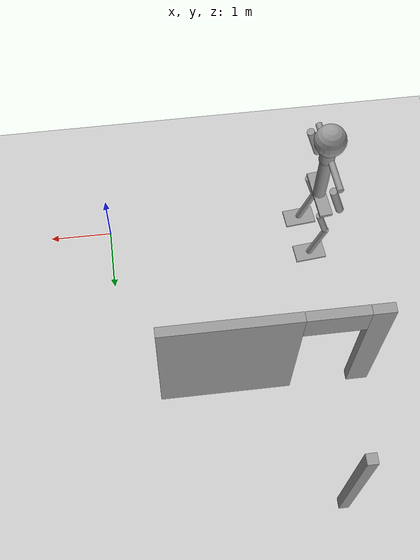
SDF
<sdf version="1.6">
 <world name="default">
  <model name="ground_plane">
   <static>1</static>
   <link name="link">
    <collision name="collision">
     <geometry><plane><normal>0 0 1</normal><size>100 100</size></plane></geometry>
     <surface><friction><ode><mu>100</mu><mu2>50</mu2></ode></friction></surface>
    </collision>
    <visual name="visual">
     <cast_shadows>0</cast_shadows>
     <geometry><plane><normal>0 0 1</normal><size>100 100</size></plane></geometry>
     <material>
      <script><uri>file://media/materials/scripts/gazebo.material</uri><name>Gazebo/Grey</name></script>
     </material>
    </visual>
   </link>
  </model>
  <model name="Building">
   <pose>-0.293126 -0.203944 0 0 -0 0</pose>
   <link name="Wall_27">
    <collision name="Wall_27_Collision">
     <geometry><box><size>0.15 0.15 2.5</size></box></geometry>
     <pose>0 0 1.25 0 -0 0</pose>
    </collision>
    <visual name="Wall_27_Visual">
     <pose>0 0 1.25 0 -0 0</pose>
     <geometry><box><size>0.15 0.15 2.5</size></box></geometry>
     <material>
      <script><uri>file://media/materials/scripts/gazebo.material</uri><name>Gazebo/Grey</name></script>
      <ambient>1 1 1 1</ambient>
     </material>
     <meta><layer>0</layer></meta>
    </visual>
    <pose>-2.80058 5.17081 0 0 -0 0</pose>
   </link>
   <link name="Wall_43">
    <pose>-1.90246 3.17229 0 0 -0 0</pose>
    <visual name="Wall_43_Visual_0">
     <pose>-1.45957 0 1.25 0 -0 0</pose>
     <geometry><box><size>0.330852 0.15 2.5</size></box></geometry>
     <material>
      <script><uri>file://media/materials/scripts/gazebo.material</uri><name>Gazebo/Grey</name></script>
      <ambient>1 1 1 1</ambient>
     </material>
     <meta><layer>0</layer></meta>
    </visual>
    <collision name="Wall_43_Collision_0">
     <geometry><box><size>0.330852 0.15 2.5</size></box></geometry>
     <pose>-1.45957 0 1.25 0 -0 0</pose>
    </collision>
    <visual name="Wall_43_Visual_1">
     <pose>0.615426 0 1.25 0 -0 0</pose>
     <geometry><box><size>2.01915 0.15 2.5</size></box></geometry>
     <material>
      <script><uri>file://media/materials/scripts/gazebo.material</uri><name>Gazebo/Grey</name></script>
      <ambient>1 1 1 1</ambient>
     </material>
     <meta><layer>0</layer></meta>
    </visual>
    <collision name="Wall_43_Collision_1">
     <geometry><box><size>2.01915 0.15 2.5</size></box></geometry>
     <pose>0.615426 0 1.25 0 -0 0</pose>
    </collision>
    <visual name="Wall_43_Visual_2">
     <pose>-0.844148 0 2.25 0 -0 0</pose>
     <geometry><box><size>0.9 0.15 0.5</size></box></geometry>
     <material>
      <script><uri>file://media/materials/scripts/gazebo.material</uri><name>Gazebo/Grey</name></script>
      <ambient>1 1 1 1</ambient>
     </material>
     <meta><layer>0</layer></meta>
    </visual>
    <collision name="Wall_43_Collision_2">
     <geometry><box><size>0.9 0.15 0.5</size></box></geometry>
     <pose>-0.844148 0 2.25 0 -0 0</pose>
    </collision>
   </link>
   <static>1</static>
  </model>
  <model name="HumanoidRobot_0">
   <model name="Untitled">
    <model name="HumanoidRobot">
     <link name="link_1">
      <pose>-0.173443 0.410402 2.12746 0 -0 0</pose>
      <inertial>
       <mass>0.94</mass>
       <inertia><ixx>0.1</ixx><ixy>0</ixy><ixz>0</ixz><iyy>0.1</iyy><iyz>0</iyz><izz>0.1</izz></inertia>
      </inertial>
      <visual name="visual">
       <geometry><sphere><radius>0.24</radius></sphere></geometry>
       <material>
        <lighting>1</lighting>
        <script><uri>file://media/materials/scripts/gazebo.material</uri><name>Gazebo/Grey</name></script>
        <shader type="pixel"><normal_map>__default__</normal_map></shader>
        <ambient>0.3 0.3 0.3 1</ambient>
        <diffuse>0.7 0.7 0.7 1</diffuse>
        <specular>0.01 0.01 0.01 1</specular>
        <emissive>0 0 0 1</emissive>
       </material>
      </visual>
      <collision name="collision">
       <geometry><sphere><radius>0.24</radius></sphere></geometry>
       <surface>
        <friction>
         <ode><mu>1</mu><mu2>1</mu2><fdir1>0 0 0</fdir1><slip1>0</slip1><slip2>0</slip2></ode>
         <torsional>
          <coefficient>1</coefficient>
          <patch_radius>0</patch_radius>
          <surface_radius>0</surface_radius>
          <use_patch_radius>1</use_patch_radius>
          <ode><slip>0</slip></ode>
         </torsional>
        </friction>
        <bounce><restitution_coefficient>0</restitution_coefficient><threshold>1e+06</threshold></bounce>
        <contact>
         <collide_without_contact>0</collide_without_contact>
         <collide_without_contact_bitmask>1</collide_without_contact_bitmask>
         <collide_bitmask>1</collide_bitmask>
         <ode>
          <soft_cfm>0</soft_cfm>
          <soft_erp>0.2</soft_erp>
          <kp>1e+13</kp>
          <kd>1</kd>
          <max_vel>0.01</max_vel>
          <min_depth>0</min_depth>
         </ode>
         <bullet>
          <split_impulse>1</split_impulse>
          <split_impulse_penetration_threshold>-0.01</split_impulse_penetration_threshold>
          <soft_cfm>0</soft_cfm>
          <soft_erp>0.2</soft_erp>
          <kp>1e+13</kp>
          <kd>1</kd>
         </bullet>
        </contact>
       </surface>
      </collision>
     </link>
     <link name="link_2">
      <pose>-0.183443 0.400402 1.74746 0 -0 0</pose>
      <inertial>
       <mass>1</mass>
       <inertia><ixx>0.145833</ixx><ixy>0</ixy><ixz>0</ixz><iyy>0.145833</iyy><iyz>0</iyz><izz>0.125</izz></inertia>
      </inertial>
      <visual name="visual">
       <geometry><cylinder><radius>0.12</radius><length>0.2</length></cylinder></geometry>
       <material>
        <lighting>1</lighting>
        <script><uri>file://media/materials/scripts/gazebo.material</uri><name>Gazebo/Grey</name></script>
        <shader type="pixel"><normal_map>__default__</normal_map></shader>
        <ambient>0.3 0.3 0.3 1</ambient>
        <diffuse>0.7 0.7 0.7 1</diffuse>
        <specular>0.01 0.01 0.01 1</specular>
        <emissive>0 0 0 1</emissive>
       </material>
      </visual>
      <collision name="collision">
       <geometry><cylinder><radius>0.12</radius><length>0.2</length></cylinder></geometry>
       <surface>
        <friction>
         <ode><mu>1</mu><mu2>1</mu2><fdir1>0 0 0</fdir1><slip1>0</slip1><slip2>0</slip2></ode>
         <torsional>
          <coefficient>1</coefficient>
          <patch_radius>0</patch_radius>
          <surface_radius>0</surface_radius>
          <use_patch_radius>1</use_patch_radius>
          <ode><slip>0</slip></ode>
         </torsional>
        </friction>
        <bounce><restitution_coefficient>0</restitution_coefficient><threshold>1e+06</threshold></bounce>
        <contact>
         <collide_without_contact>0</collide_without_contact>
         <collide_without_contact_bitmask>1</collide_without_contact_bitmask>
         <collide_bitmask>1</collide_bitmask>
         <ode>
          <soft_cfm>0</soft_cfm>
          <soft_erp>0.2</soft_erp>
          <kp>1e+13</kp>
          <kd>1</kd>
          <max_vel>0.01</max_vel>
          <min_depth>0</min_depth>
         </ode>
         <bullet>
          <split_impulse>1</split_impulse>
          <split_impulse_penetration_threshold>-0.01</split_impulse_penetration_threshold>
          <soft_cfm>0</soft_cfm>
          <soft_erp>0.2</soft_erp>
          <kp>1e+13</kp>
          <kd>1</kd>
         </bullet>
        </contact>
       </surface>
      </collision>
     </link>
     <link name="link_3">
      <pose>-0.218443 0.410402 1.69752 0 -0 0</pose>
      <inertial>
       <mass>1</mass>
       <inertia><ixx>0.145833</ixx><ixy>0</ixy><ixz>0</ixz><iyy>0.145833</iyy><iyz>0</iyz><izz>0.125</izz></inertia>
      </inertial>
      <visual name="visual">
       <pose>0 0 0 1.5707 -0 0</pose>
       <geometry><cylinder><radius>0.05</radius><length>1.2</length></cylinder></geometry>
       <material>
        <lighting>1</lighting>
        <script><uri>file://media/materials/scripts/gazebo.material</uri><name>Gazebo/Grey</name></script>
        <shader type="pixel"><normal_map>__default__</normal_map></shader>
        <ambient>0.3 0.3 0.3 1</ambient>
        <diffuse>0.7 0.7 0.7 1</diffuse>
        <specular>0.01 0.01 0.01 1</specular>
        <emissive>0 0 0 1</emissive>
       </material>
      </visual>
      <collision name="collision">
       <pose>0 0 0 1.5707 -0 0</pose>
       <geometry><cylinder><radius>0.05</radius><length>1.2</length></cylinder></geometry>
       <surface>
        <friction>
         <ode><mu>1</mu><mu2>1</mu2><fdir1>0 0 0</fdir1><slip1>0</slip1><slip2>0</slip2></ode>
         <torsional>
          <coefficient>1</coefficient>
          <patch_radius>0</patch_radius>
          <surface_radius>0</surface_radius>
          <use_patch_radius>1</use_patch_radius>
          <ode><slip>0</slip></ode>
         </torsional>
        </friction>
        <bounce><restitution_coefficient>0</restitution_coefficient><threshold>1e+06</threshold></bounce>
        <contact>
         <collide_without_contact>0</collide_without_contact>
         <collide_without_contact_bitmask>1</collide_without_contact_bitmask>
         <collide_bitmask>1</collide_bitmask>
         <ode>
          <soft_cfm>0</soft_cfm>
          <soft_erp>0.2</soft_erp>
          <kp>1e+13</kp>
          <kd>1</kd>
          <max_vel>0.01</max_vel>
          <min_depth>0</min_depth>
         </ode>
         <bullet>
          <split_impulse>1</split_impulse>
          <split_impulse_penetration_threshold>-0.01</split_impulse_penetration_threshold>
          <soft_cfm>0</soft_cfm>
          <soft_erp>0.2</soft_erp>
          <kp>1e+13</kp>
          <kd>1</kd>
         </bullet>
        </contact>
       </surface>
      </collision>
     </link>
     <link name="link_4">
      <pose>-0.173443 -0.129603 1.34313 0 -0 0</pose>
      <inertial>
       <mass>1</mass>
       <inertia><ixx>0.145833</ixx><ixy>0</ixy><ixz>0</ixz><iyy>0.145833</iyy><iyz>0</iyz><izz>0.125</izz></inertia>
      </inertial>
      <visual name="visual">
       <pose>0 0 0 0 0.3 0</pose>
       <geometry><cylinder><radius>0.06</radius><length>0.6</length></cylinder></geometry>
       <material>
        <lighting>1</lighting>
        <script><uri>file://media/materials/scripts/gazebo.material</uri><name>Gazebo/Grey</name></script>
        <shader type="pixel"><normal_map>__default__</normal_map></shader>
        <ambient>0.3 0.3 0.3 1</ambient>
        <diffuse>0.7 0.7 0.7 1</diffuse>
        <specular>0.01 0.01 0.01 1</specular>
        <emissive>0 0 0 1</emissive>
       </material>
      </visual>
      <collision name="collision">
       <pose>0 0 0 0 0.3 0</pose>
       <geometry><cylinder><radius>0.06</radius><length>0.6</length></cylinder></geometry>
       <surface>
        <friction>
         <ode><mu>1</mu><mu2>1</mu2><fdir1>0 0 0</fdir1><slip1>0</slip1><slip2>0</slip2></ode>
         <torsional>
          <coefficient>1</coefficient>
          <patch_radius>0</patch_radius>
          <surface_radius>0</surface_radius>
          <use_patch_radius>1</use_patch_radius>
          <ode><slip>0</slip></ode>
         </torsional>
        </friction>
        <bounce><restitution_coefficient>0</restitution_coefficient><threshold>1e+06</threshold></bounce>
        <contact>
         <collide_without_contact>0</collide_without_contact>
         <collide_without_contact_bitmask>1</collide_without_contact_bitmask>
         <collide_bitmask>1</collide_bitmask>
         <ode>
          <soft_cfm>0</soft_cfm>
          <soft_erp>0.2</soft_erp>
          <kp>1e+13</kp>
          <kd>1</kd>
          <max_vel>0.01</max_vel>
          <min_depth>0</min_depth>
         </ode>
         <bullet>
          <split_impulse>1</split_impulse>
          <split_impulse_penetration_threshold>-0.01</split_impulse_penetration_threshold>
          <soft_cfm>0</soft_cfm>
          <soft_erp>0.2</soft_erp>
          <kp>1e+13</kp>
          <kd>1</kd>
         </bullet>
        </contact>
       </surface>
      </collision>
     </link>
     <link name="link_4_clone">
      <pose>-0.224419 0.950407 1.34313 0 -0 0</pose>
      <inertial>
       <mass>1</mass>
       <inertia><ixx>0.145833</ixx><ixy>0</ixy><ixz>0</ixz><iyy>0.145833</iyy><iyz>0</iyz><izz>0.125</izz></inertia>
      </inertial>
      <visual name="visual">
       <pose>0 0 0 0 0.3 0</pose>
       <geometry><cylinder><radius>0.06</radius><length>0.6</length></cylinder></geometry>
       <material>
        <lighting>1</lighting>
        <script><uri>file://media/materials/scripts/gazebo.material</uri><name>Gazebo/Grey</name></script>
        <shader type="pixel"><normal_map>__default__</normal_map></shader>
        <ambient>0.3 0.3 0.3 1</ambient>
        <diffuse>0.7 0.7 0.7 1</diffuse>
        <specular>0.01 0.01 0.01 1</specular>
        <emissive>0 0 0 1</emissive>
       </material>
      </visual>
      <collision name="collision">
       <pose>0 0 0 0 0.3 0</pose>
       <geometry><cylinder><radius>0.06</radius><length>0.6</length></cylinder></geometry>
       <surface>
        <friction>
         <ode><mu>1</mu><mu2>1</mu2><fdir1>0 0 0</fdir1><slip1>0</slip1><slip2>0</slip2></ode>
         <torsional>
          <coefficient>1</coefficient>
          <patch_radius>0</patch_radius>
          <surface_radius>0</surface_radius>
          <use_patch_radius>1</use_patch_radius>
          <ode><slip>0</slip></ode>
         </torsional>
        </friction>
        <bounce><restitution_coefficient>0</restitution_coefficient><threshold>1e+06</threshold></bounce>
        <contact>
         <collide_without_contact>0</collide_without_contact>
         <collide_without_contact_bitmask>1</collide_without_contact_bitmask>
         <collide_bitmask>1</collide_bitmask>
         <ode>
          <soft_cfm>0</soft_cfm>
          <soft_erp>0.2</soft_erp>
          <kp>1e+13</kp>
          <kd>1</kd>
          <max_vel>0.01</max_vel>
          <min_depth>0</min_depth>
         </ode>
         <bullet>
          <split_impulse>1</split_impulse>
          <split_impulse_penetration_threshold>-0.01</split_impulse_penetration_threshold>
          <soft_cfm>0</soft_cfm>
          <soft_erp>0.2</soft_erp>
          <kp>1e+13</kp>
          <kd>1</kd>
         </bullet>
        </contact>
       </surface>
      </collision>
     </link>
     <link name="link_5">
      <pose>-0.193443 0.390402 1.14746 0 -0 0</pose>
      <inertial>
       <mass>1</mass>
       <inertia><ixx>0.145833</ixx><ixy>0</ixy><ixz>0</ixz><iyy>0.145833</iyy><iyz>0</iyz><izz>0.125</izz></inertia>
      </inertial>
      <visual name="visual">
       <geometry><cylinder><radius>0.1</radius><length>1</length></cylinder></geometry>
       <material>
        <lighting>1</lighting>
        <script><uri>file://media/materials/scripts/gazebo.material</uri><name>Gazebo/Grey</name></script>
        <shader type="pixel"><normal_map>__default__</normal_map></shader>
        <ambient>0.3 0.3 0.3 1</ambient>
        <diffuse>0.7 0.7 0.7 1</diffuse>
        <specular>0.01 0.01 0.01 1</specular>
        <emissive>0 0 0 1</emissive>
       </material>
      </visual>
      <collision name="collision">
       <geometry><cylinder><radius>0.1</radius><length>1</length></cylinder></geometry>
       <surface>
        <friction>
         <ode><mu>1</mu><mu2>1</mu2><fdir1>0 0 0</fdir1><slip1>0</slip1><slip2>0</slip2></ode>
         <torsional>
          <coefficient>1</coefficient>
          <patch_radius>0</patch_radius>
          <surface_radius>0</surface_radius>
          <use_patch_radius>1</use_patch_radius>
          <ode><slip>0</slip></ode>
         </torsional>
        </friction>
        <bounce><restitution_coefficient>0</restitution_coefficient><threshold>1e+06</threshold></bounce>
        <contact>
         <collide_without_contact>0</collide_without_contact>
         <collide_without_contact_bitmask>1</collide_without_contact_bitmask>
         <collide_bitmask>1</collide_bitmask>
         <ode>
          <soft_cfm>0</soft_cfm>
          <soft_erp>0.2</soft_erp>
          <kp>1e+13</kp>
          <kd>1</kd>
          <max_vel>0.01</max_vel>
          <min_depth>0</min_depth>
         </ode>
         <bullet>
          <split_impulse>1</split_impulse>
          <split_impulse_penetration_threshold>-0.01</split_impulse_penetration_threshold>
          <soft_cfm>0</soft_cfm>
          <soft_erp>0.2</soft_erp>
          <kp>1e+13</kp>
          <kd>1</kd>
         </bullet>
        </contact>
       </surface>
      </collision>
     </link>
     <link name="link_6">
      <pose>-0.193443 0.410402 0.672459 0 -0 0</pose>
      <inertial>
       <mass>1</mass>
       <inertia>
        <ixx>0.166667</ixx>
        <ixy>0</ixy>
        <ixz>0</ixz>
        <iyy>0.166667</iyy>
        <iyz>0</iyz>
        <izz>0.166667</izz>
       </inertia>
      </inertial>
      <visual name="visual">
       <geometry><box><size>0.2 0.8 0.05</size></box></geometry>
       <material>
        <lighting>1</lighting>
        <script><uri>file://media/materials/scripts/gazebo.material</uri><name>Gazebo/Grey</name></script>
        <shader type="pixel"><normal_map>__default__</normal_map></shader>
        <ambient>0.3 0.3 0.3 1</ambient>
        <diffuse>0.7 0.7 0.7 1</diffuse>
        <specular>0.01 0.01 0.01 1</specular>
        <emissive>0 0 0 1</emissive>
       </material>
      </visual>
      <collision name="collision">
       <geometry><box><size>0.2 0.8 0.05</size></box></geometry>
       <surface>
        <friction>
         <ode><mu>1</mu><mu2>1</mu2><fdir1>0 0 0</fdir1><slip1>0</slip1><slip2>0</slip2></ode>
         <torsional>
          <coefficient>1</coefficient>
          <patch_radius>0</patch_radius>
          <surface_radius>0</surface_radius>
          <use_patch_radius>1</use_patch_radius>
          <ode><slip>0</slip></ode>
         </torsional>
        </friction>
        <bounce><restitution_coefficient>0</restitution_coefficient><threshold>1e+06</threshold></bounce>
        <contact>
         <collide_without_contact>0</collide_without_contact>
         <collide_without_contact_bitmask>1</collide_without_contact_bitmask>
         <collide_bitmask>1</collide_bitmask>
         <ode>
          <soft_cfm>0</soft_cfm>
          <soft_erp>0.2</soft_erp>
          <kp>1e+13</kp>
          <kd>1</kd>
          <max_vel>0.01</max_vel>
          <min_depth>0</min_depth>
         </ode>
         <bullet>
          <split_impulse>1</split_impulse>
          <split_impulse_penetration_threshold>-0.01</split_impulse_penetration_threshold>
          <soft_cfm>0</soft_cfm>
          <soft_erp>0.2</soft_erp>
          <kp>1e+13</kp>
          <kd>1</kd>
         </bullet>
        </contact>
       </surface>
      </collision>
     </link>
     <link name="link_7">
      <pose>-0.18262 0.060402 0.393848 0 -0 0</pose>
      <inertial>
       <mass>1</mass>
       <inertia><ixx>0.145833</ixx><ixy>0</ixy><ixz>0</ixz><iyy>0.145833</iyy><iyz>0</iyz><izz>0.125</izz></inertia>
      </inertial>
      <visual name="visual">
       <pose>0 0 0 0 0.3 0</pose>
       <geometry><cylinder><radius>0.05</radius><length>0.5</length></cylinder></geometry>
       <material>
        <lighting>1</lighting>
        <script><uri>file://media/materials/scripts/gazebo.material</uri><name>Gazebo/Grey</name></script>
        <shader type="pixel"><normal_map>__default__</normal_map></shader>
        <ambient>0.3 0.3 0.3 1</ambient>
        <diffuse>0.7 0.7 0.7 1</diffuse>
        <specular>0.01 0.01 0.01 1</specular>
        <emissive>0 0 0 1</emissive>
       </material>
      </visual>
      <collision name="collision">
       <pose>0 0 0 0 0.3 0</pose>
       <geometry><cylinder><radius>0.05</radius><length>0.5</length></cylinder></geometry>
       <surface>
        <friction>
         <ode><mu>1</mu><mu2>1</mu2><fdir1>0 0 0</fdir1><slip1>0</slip1><slip2>0</slip2></ode>
         <torsional>
          <coefficient>1</coefficient>
          <patch_radius>0</patch_radius>
          <surface_radius>0</surface_radius>
          <use_patch_radius>1</use_patch_radius>
          <ode><slip>0</slip></ode>
         </torsional>
        </friction>
        <bounce><restitution_coefficient>0</restitution_coefficient><threshold>1e+06</threshold></bounce>
        <contact>
         <collide_without_contact>0</collide_without_contact>
         <collide_without_contact_bitmask>1</collide_without_contact_bitmask>
         <collide_bitmask>1</collide_bitmask>
         <ode>
          <soft_cfm>0</soft_cfm>
          <soft_erp>0.2</soft_erp>
          <kp>1e+13</kp>
          <kd>1</kd>
          <max_vel>0.01</max_vel>
          <min_depth>0</min_depth>
         </ode>
         <bullet>
          <split_impulse>1</split_impulse>
          <split_impulse_penetration_threshold>-0.01</split_impulse_penetration_threshold>
          <soft_cfm>0</soft_cfm>
          <soft_erp>0.2</soft_erp>
          <kp>1e+13</kp>
          <kd>1</kd>
         </bullet>
        </contact>
       </surface>
      </collision>
     </link>
     <link name="link_7_clone">
      <pose>-0.173443 0.760402 0.393849 0 -0 0</pose>
      <inertial>
       <mass>1</mass>
       <inertia><ixx>0.145833</ixx><ixy>0</ixy><ixz>0</ixz><iyy>0.145833</iyy><iyz>0</iyz><izz>0.125</izz></inertia>
      </inertial>
      <visual name="visual">
       <pose>0 0 0 0 0.3 0</pose>
       <geometry><cylinder><radius>0.05</radius><length>0.5</length></cylinder></geometry>
       <material>
        <lighting>1</lighting>
        <script><uri>file://media/materials/scripts/gazebo.material</uri><name>Gazebo/Grey</name></script>
        <shader type="pixel"><normal_map>__default__</normal_map></shader>
        <ambient>0.3 0.3 0.3 1</ambient>
        <diffuse>0.7 0.7 0.7 1</diffuse>
        <specular>0.01 0.01 0.01 1</specular>
        <emissive>0 0 0 1</emissive>
       </material>
      </visual>
      <collision name="collision">
       <pose>0 0 0 0 0.3 0</pose>
       <geometry><cylinder><radius>0.05</radius><length>0.5</length></cylinder></geometry>
       <surface>
        <friction>
         <ode><mu>1</mu><mu2>1</mu2><fdir1>0 0 0</fdir1><slip1>0</slip1><slip2>0</slip2></ode>
         <torsional>
          <coefficient>1</coefficient>
          <patch_radius>0</patch_radius>
          <surface_radius>0</surface_radius>
          <use_patch_radius>1</use_patch_radius>
          <ode><slip>0</slip></ode>
         </torsional>
        </friction>
        <bounce><restitution_coefficient>0</restitution_coefficient><threshold>1e+06</threshold></bounce>
        <contact>
         <collide_without_contact>0</collide_without_contact>
         <collide_without_contact_bitmask>1</collide_without_contact_bitmask>
         <collide_bitmask>1</collide_bitmask>
         <ode>
          <soft_cfm>0</soft_cfm>
          <soft_erp>0.2</soft_erp>
          <kp>1e+13</kp>
          <kd>1</kd>
          <max_vel>0.01</max_vel>
          <min_depth>0</min_depth>
         </ode>
         <bullet>
          <split_impulse>1</split_impulse>
          <split_impulse_penetration_threshold>-0.01</split_impulse_penetration_threshold>
          <soft_cfm>0</soft_cfm>
          <soft_erp>0.2</soft_erp>
          <kp>1e+13</kp>
          <kd>1</kd>
         </bullet>
        </contact>
       </surface>
      </collision>
     </link>
     <link name="link_8">
      <pose>-0.173443 0.060402 -0.208906 0 -0 0</pose>
      <inertial>
       <mass>1</mass>
       <inertia><ixx>0.145833</ixx><ixy>0</ixy><ixz>0</ixz><iyy>0.145833</iyy><iyz>0</iyz><izz>0.125</izz></inertia>
      </inertial>
      <visual name="visual">
       <pose>0 0 0 0 -0.3 0</pose>
       <geometry><cylinder><radius>0.05</radius><length>0.7</length></cylinder></geometry>
       <material>
        <lighting>1</lighting>
        <script><uri>file://media/materials/scripts/gazebo.material</uri><name>Gazebo/Grey</name></script>
        <shader type="pixel"><normal_map>__default__</normal_map></shader>
        <ambient>0.3 0.3 0.3 1</ambient>
        <diffuse>0.7 0.7 0.7 1</diffuse>
        <specular>0.01 0.01 0.01 1</specular>
        <emissive>0 0 0 1</emissive>
       </material>
      </visual>
      <collision name="collision">
       <pose>0 0 0 0 -0.3 0</pose>
       <geometry><cylinder><radius>0.05</radius><length>0.7</length></cylinder></geometry>
       <surface>
        <friction>
         <ode><mu>1</mu><mu2>1</mu2><fdir1>0 0 0</fdir1><slip1>0</slip1><slip2>0</slip2></ode>
         <torsional>
          <coefficient>1</coefficient>
          <patch_radius>0</patch_radius>
          <surface_radius>0</surface_radius>
          <use_patch_radius>1</use_patch_radius>
          <ode><slip>0</slip></ode>
         </torsional>
        </friction>
        <bounce><restitution_coefficient>0</restitution_coefficient><threshold>1e+06</threshold></bounce>
        <contact>
         <collide_without_contact>0</collide_without_contact>
         <collide_without_contact_bitmask>1</collide_without_contact_bitmask>
         <collide_bitmask>1</collide_bitmask>
         <ode>
          <soft_cfm>0</soft_cfm>
          <soft_erp>0.2</soft_erp>
          <kp>1e+13</kp>
          <kd>1</kd>
          <max_vel>0.01</max_vel>
          <min_depth>0</min_depth>
         </ode>
         <bullet>
          <split_impulse>1</split_impulse>
          <split_impulse_penetration_threshold>-0.01</split_impulse_penetration_threshold>
          <soft_cfm>0</soft_cfm>
          <soft_erp>0.2</soft_erp>
          <kp>1e+13</kp>
          <kd>1</kd>
         </bullet>
        </contact>
       </surface>
      </collision>
     </link>
     <link name="link_8_clone">
      <pose>-0.173443 0.760402 -0.208905 0 -0 0</pose>
      <inertial>
       <mass>1</mass>
       <inertia><ixx>0.145833</ixx><ixy>0</ixy><ixz>0</ixz><iyy>0.145833</iyy><iyz>0</iyz><izz>0.125</izz></inertia>
      </inertial>
      <visual name="visual">
       <pose>0 0 0 0 -0.3 0</pose>
       <geometry><cylinder><radius>0.05</radius><length>0.7</length></cylinder></geometry>
       <material>
        <lighting>1</lighting>
        <script><uri>file://media/materials/scripts/gazebo.material</uri><name>Gazebo/Grey</name></script>
        <shader type="pixel"><normal_map>__default__</normal_map></shader>
        <ambient>0.3 0.3 0.3 1</ambient>
        <diffuse>0.7 0.7 0.7 1</diffuse>
        <specular>0.01 0.01 0.01 1</specular>
        <emissive>0 0 0 1</emissive>
       </material>
      </visual>
      <collision name="collision">
       <pose>0 0 0 0 -0.3 0</pose>
       <geometry><cylinder><radius>0.05</radius><length>0.7</length></cylinder></geometry>
       <surface>
        <friction>
         <ode><mu>1</mu><mu2>1</mu2><fdir1>0 0 0</fdir1><slip1>0</slip1><slip2>0</slip2></ode>
         <torsional>
          <coefficient>1</coefficient>
          <patch_radius>0</patch_radius>
          <surface_radius>0</surface_radius>
          <use_patch_radius>1</use_patch_radius>
          <ode><slip>0</slip></ode>
         </torsional>
        </friction>
        <bounce><restitution_coefficient>0</restitution_coefficient><threshold>1e+06</threshold></bounce>
        <contact>
         <collide_without_contact>0</collide_without_contact>
         <collide_without_contact_bitmask>1</collide_without_contact_bitmask>
         <collide_bitmask>1</collide_bitmask>
         <ode>
          <soft_cfm>0</soft_cfm>
          <soft_erp>0.2</soft_erp>
          <kp>1e+13</kp>
          <kd>1</kd>
          <max_vel>0.01</max_vel>
          <min_depth>0</min_depth>
         </ode>
         <bullet>
          <split_impulse>1</split_impulse>
          <split_impulse_penetration_threshold>-0.01</split_impulse_penetration_threshold>
          <soft_cfm>0</soft_cfm>
          <soft_erp>0.2</soft_erp>
          <kp>1e+13</kp>
          <kd>1</kd>
         </bullet>
        </contact>
       </surface>
      </collision>
     </link>
     <link name="link_9">
      <pose>-0.073443 0.072902 -0.54305 0 -0 0</pose>
      <inertial>
       <mass>1</mass>
       <inertia>
        <ixx>0.166667</ixx>
        <ixy>0</ixy>
        <ixz>0</ixz>
        <iyy>0.166667</iyy>
        <iyz>0</iyz>
        <izz>0.166667</izz>
       </inertia>
      </inertial>
      <visual name="visual">
       <geometry><box><size>0.5 0.3 0.03</size></box></geometry>
       <material>
        <lighting>1</lighting>
        <script><uri>file://media/materials/scripts/gazebo.material</uri><name>Gazebo/Grey</name></script>
        <shader type="pixel"><normal_map>__default__</normal_map></shader>
        <ambient>0.3 0.3 0.3 1</ambient>
        <diffuse>0.7 0.7 0.7 1</diffuse>
        <specular>0.01 0.01 0.01 1</specular>
        <emissive>0 0 0 1</emissive>
       </material>
      </visual>
      <collision name="collision">
       <geometry><box><size>0.5 0.3 0.03</size></box></geometry>
       <surface>
        <friction>
         <ode><mu>1</mu><mu2>1</mu2><fdir1>0 0 0</fdir1><slip1>0</slip1><slip2>0</slip2></ode>
         <torsional>
          <coefficient>1</coefficient>
          <patch_radius>0</patch_radius>
          <surface_radius>0</surface_radius>
          <use_patch_radius>1</use_patch_radius>
          <ode><slip>0</slip></ode>
         </torsional>
        </friction>
        <bounce><restitution_coefficient>0</restitution_coefficient><threshold>1e+06</threshold></bounce>
        <contact>
         <collide_without_contact>0</collide_without_contact>
         <collide_without_contact_bitmask>1</collide_without_contact_bitmask>
         <collide_bitmask>1</collide_bitmask>
         <ode>
          <soft_cfm>0</soft_cfm>
          <soft_erp>0.2</soft_erp>
          <kp>1e+13</kp>
          <kd>1</kd>
          <max_vel>0.01</max_vel>
          <min_depth>0</min_depth>
         </ode>
         <bullet>
          <split_impulse>1</split_impulse>
          <split_impulse_penetration_threshold>-0.01</split_impulse_penetration_threshold>
          <soft_cfm>0</soft_cfm>
          <soft_erp>0.2</soft_erp>
          <kp>1e+13</kp>
          <kd>1</kd>
         </bullet>
        </contact>
       </surface>
      </collision>
     </link>
     <link name="link_9_clone">
      <pose>-0.073443 0.760402 -0.543049 0 -0 0</pose>
      <inertial>
       <mass>1</mass>
       <inertia>
        <ixx>0.166667</ixx>
        <ixy>0</ixy>
        <ixz>0</ixz>
        <iyy>0.166667</iyy>
        <iyz>0</iyz>
        <izz>0.166667</izz>
       </inertia>
      </inertial>
      <visual name="visual">
       <geometry><box><size>0.5 0.3 0.03</size></box></geometry>
       <material>
        <lighting>1</lighting>
        <script><uri>file://media/materials/scripts/gazebo.material</uri><name>Gazebo/Grey</name></script>
        <shader type="pixel"><normal_map>__default__</normal_map></shader>
        <ambient>0.3 0.3 0.3 1</ambient>
        <diffuse>0.7 0.7 0.7 1</diffuse>
        <specular>0.01 0.01 0.01 1</specular>
        <emissive>0 0 0 1</emissive>
       </material>
      </visual>
      <collision name="collision">
       <geometry><box><size>0.5 0.3 0.03</size></box></geometry>
       <surface>
        <friction>
         <ode><mu>1</mu><mu2>1</mu2><fdir1>0 0 0</fdir1><slip1>0</slip1><slip2>0</slip2></ode>
         <torsional>
          <coefficient>1</coefficient>
          <patch_radius>0</patch_radius>
          <surface_radius>0</surface_radius>
          <use_patch_radius>1</use_patch_radius>
          <ode><slip>0</slip></ode>
         </torsional>
        </friction>
        <bounce><restitution_coefficient>0</restitution_coefficient><threshold>1e+06</threshold></bounce>
        <contact>
         <collide_without_contact>0</collide_without_contact>
         <collide_without_contact_bitmask>1</collide_without_contact_bitmask>
         <collide_bitmask>1</collide_bitmask>
         <ode>
          <soft_cfm>0</soft_cfm>
          <soft_erp>0.2</soft_erp>
          <kp>1e+13</kp>
          <kd>1</kd>
          <max_vel>0.01</max_vel>
          <min_depth>0</min_depth>
         </ode>
         <bullet>
          <split_impulse>1</split_impulse>
          <split_impulse_penetration_threshold>-0.01</split_impulse_penetration_threshold>
          <soft_cfm>0</soft_cfm>
          <soft_erp>0.2</soft_erp>
          <kp>1e+13</kp>
          <kd>1</kd>
         </bullet>
        </contact>
       </surface>
      </collision>
     </link>
     <joint name="link_1_JOINT_0" type="fixed">
      <parent>link_1</parent>
      <child>link_2</child>
      <axis>
       <xyz>1 0 0</xyz>
       <use_parent_model_frame>0</use_parent_model_frame>
       <limit>
        <lower>-1.79769e+308</lower>
        <upper>1.79769e+308</upper>
        <effort>-1</effort>
        <velocity>-1</velocity>
       </limit>
       <dynamics>
        <spring_reference>0</spring_reference>
        <spring_stiffness>0</spring_stiffness>
        <damping>0</damping>
       </dynamics>
      </axis>
      <physics>
       <ode><limit><cfm>0</cfm><erp>0.2</erp></limit><suspension><cfm>0</cfm><erp>0.2</erp></suspension></ode>
      </physics>
     </joint>
     <joint name="link_2_JOINT_1" type="fixed">
      <parent>link_2</parent>
      <child>link_3</child>
      <axis>
       <xyz>1 0 0</xyz>
       <use_parent_model_frame>0</use_parent_model_frame>
       <limit>
        <lower>-1.79769e+308</lower>
        <upper>1.79769e+308</upper>
        <effort>-1</effort>
        <velocity>-1</velocity>
       </limit>
       <dynamics>
        <spring_reference>0</spring_reference>
        <spring_stiffness>0</spring_stiffness>
        <damping>0</damping>
       </dynamics>
      </axis>
      <physics>
       <ode><limit><cfm>0</cfm><erp>0.2</erp></limit><suspension><cfm>0</cfm><erp>0.2</erp></suspension></ode>
      </physics>
     </joint>
     <joint name="link_2_JOINT_4" type="fixed">
      <parent>link_2</parent>
      <child>link_5</child>
      <axis>
       <xyz>0 0 1</xyz>
       <use_parent_model_frame>0</use_parent_model_frame>
       <limit>
        <lower>-1.79769e+308</lower>
        <upper>1.79769e+308</upper>
        <effort>-1</effort>
        <velocity>-1</velocity>
       </limit>
       <dynamics>
        <spring_reference>0</spring_reference>
        <spring_stiffness>0</spring_stiffness>
        <damping>0</damping>
       </dynamics>
      </axis>
      <physics>
       <ode><limit><cfm>0</cfm><erp>0.2</erp></limit><suspension><cfm>0</cfm><erp>0.2</erp></suspension></ode>
      </physics>
     </joint>
     <joint name="link_3_JOINT_2" type="fixed">
      <parent>link_3</parent>
      <child>link_4</child>
      <axis>
       <xyz>1 0 0</xyz>
       <use_parent_model_frame>0</use_parent_model_frame>
       <limit>
        <lower>-1.79769e+308</lower>
        <upper>1.79769e+308</upper>
        <effort>-1</effort>
        <velocity>-1</velocity>
       </limit>
       <dynamics>
        <spring_reference>0</spring_reference>
        <spring_stiffness>0</spring_stiffness>
        <damping>0</damping>
       </dynamics>
      </axis>
      <physics>
       <ode><limit><cfm>0</cfm><erp>0.2</erp></limit><suspension><cfm>0</cfm><erp>0.2</erp></suspension></ode>
      </physics>
     </joint>
     <joint name="link_3_JOINT_3" type="fixed">
      <parent>link_3</parent>
      <child>link_4_clone</child>
      <axis>
       <xyz>1 0 0</xyz>
       <use_parent_model_frame>0</use_parent_model_frame>
       <limit>
        <lower>-1.79769e+308</lower>
        <upper>1.79769e+308</upper>
        <effort>-1</effort>
        <velocity>-1</velocity>
       </limit>
       <dynamics>
        <spring_reference>0</spring_reference>
        <spring_stiffness>0</spring_stiffness>
        <damping>0</damping>
       </dynamics>
      </axis>
      <physics>
       <ode><limit><cfm>0</cfm><erp>0.2</erp></limit><suspension><cfm>0</cfm><erp>0.2</erp></suspension></ode>
      </physics>
     </joint>
     <joint name="link_5_JOINT_5" type="fixed">
      <parent>link_5</parent>
      <child>link_6</child>
      <axis>
       <xyz>0 0 1</xyz>
       <use_parent_model_frame>0</use_parent_model_frame>
       <limit>
        <lower>-1.79769e+308</lower>
        <upper>1.79769e+308</upper>
        <effort>-1</effort>
        <velocity>-1</velocity>
       </limit>
       <dynamics>
        <spring_reference>0</spring_reference>
        <spring_stiffness>0</spring_stiffness>
        <damping>0</damping>
       </dynamics>
      </axis>
      <physics>
       <ode><limit><cfm>0</cfm><erp>0.2</erp></limit><suspension><cfm>0</cfm><erp>0.2</erp></suspension></ode>
      </physics>
     </joint>
     <joint name="link_6_JOINT_6" type="fixed">
      <parent>link_6</parent>
      <child>link_7</child>
      <axis>
       <xyz>0 1 0</xyz>
       <use_parent_model_frame>0</use_parent_model_frame>
       <limit>
        <lower>-1.79769e+308</lower>
        <upper>1.79769e+308</upper>
        <effort>-1</effort>
        <velocity>-1</velocity>
       </limit>
       <dynamics>
        <spring_reference>0</spring_reference>
        <spring_stiffness>0</spring_stiffness>
        <damping>0</damping>
        <friction>0</friction>
       </dynamics>
      </axis>
      <physics>
       <ode><limit><cfm>0</cfm><erp>0.2</erp></limit><suspension><cfm>0</cfm><erp>0.2</erp></suspension></ode>
      </physics>
     </joint>
     <joint name="link_6_JOINT_7" type="fixed">
      <parent>link_6</parent>
      <child>link_7_clone</child>
      <axis>
       <xyz>0 1 0</xyz>
       <use_parent_model_frame>0</use_parent_model_frame>
       <limit>
        <lower>-1.79769e+308</lower>
        <upper>1.79769e+308</upper>
        <effort>-1</effort>
        <velocity>-1</velocity>
       </limit>
       <dynamics>
        <spring_reference>0</spring_reference>
        <spring_stiffness>0</spring_stiffness>
        <damping>0</damping>
       </dynamics>
      </axis>
      <physics>
       <ode><limit><cfm>0</cfm><erp>0.2</erp></limit><suspension><cfm>0</cfm><erp>0.2</erp></suspension></ode>
      </physics>
     </joint>
     <joint name="link_7_JOINT_8" type="fixed">
      <parent>link_7</parent>
      <child>link_8</child>
      <axis>
       <xyz>0 1 0</xyz>
       <use_parent_model_frame>0</use_parent_model_frame>
       <limit>
        <lower>-1.79769e+308</lower>
        <upper>1.79769e+308</upper>
        <effort>-1</effort>
        <velocity>-1</velocity>
       </limit>
       <dynamics>
        <spring_reference>0</spring_reference>
        <spring_stiffness>0</spring_stiffness>
        <damping>0</damping>
       </dynamics>
      </axis>
      <physics>
       <ode><limit><cfm>0</cfm><erp>0.2</erp></limit><suspension><cfm>0</cfm><erp>0.2</erp></suspension></ode>
      </physics>
     </joint>
     <joint name="link_7_clone_JOINT_9" type="fixed">
      <parent>link_7_clone</parent>
      <child>link_8_clone</child>
      <axis>
       <xyz>0 1 0</xyz>
       <use_parent_model_frame>0</use_parent_model_frame>
       <limit>
        <lower>-1.79769e+308</lower>
        <upper>1.79769e+308</upper>
        <effort>-1</effort>
        <velocity>-1</velocity>
       </limit>
       <dynamics>
        <spring_reference>0</spring_reference>
        <spring_stiffness>0</spring_stiffness>
        <damping>0</damping>
       </dynamics>
      </axis>
      <physics>
       <ode><limit><cfm>0</cfm><erp>0.2</erp></limit><suspension><cfm>0</cfm><erp>0.2</erp></suspension></ode>
      </physics>
     </joint>
     <joint name="link_8_JOINT_10" type="fixed">
      <parent>link_8</parent>
      <child>link_9</child>
      <axis>
       <xyz>0 1 0</xyz>
       <use_parent_model_frame>0</use_parent_model_frame>
       <limit>
        <lower>-1.79769e+308</lower>
        <upper>1.79769e+308</upper>
        <effort>-1</effort>
        <velocity>-1</velocity>
       </limit>
       <dynamics>
        <spring_reference>0</spring_reference>
        <spring_stiffness>0</spring_stiffness>
        <damping>0</damping>
       </dynamics>
      </axis>
      <physics>
       <ode><limit><cfm>0</cfm><erp>0.2</erp></limit><suspension><cfm>0</cfm><erp>0.2</erp></suspension></ode>
      </physics>
     </joint>
     <joint name="link_8_clone_JOINT_11" type="fixed">
      <parent>link_8_clone</parent>
      <child>link_9_clone</child>
      <axis>
       <xyz>0 1 0</xyz>
       <use_parent_model_frame>0</use_parent_model_frame>
       <limit>
        <lower>-1.79769e+308</lower>
        <upper>1.79769e+308</upper>
        <effort>-1</effort>
        <velocity>-1</velocity>
       </limit>
       <dynamics>
        <spring_reference>0</spring_reference>
        <spring_stiffness>0</spring_stiffness>
        <damping>0</damping>
       </dynamics>
      </axis>
      <physics>
       <ode><limit><cfm>0</cfm><erp>0.2</erp></limit><suspension><cfm>0</cfm><erp>0.2</erp></suspension></ode>
      </physics>
     </joint>
     <static>0</static>
     <pose>-3e-06 -2e-06 -0 0 -0 0</pose>
    </model>
    <static>1</static>
    <pose>-3e-06 3e-06 0 0 -0 0</pose>
   </model>
   <static>1</static>
   <pose>-3.1417 -0.0195 0.558049 -3e-06 -4e-06 0.097783</pose>
  </model>
 </world>
</sdf>
